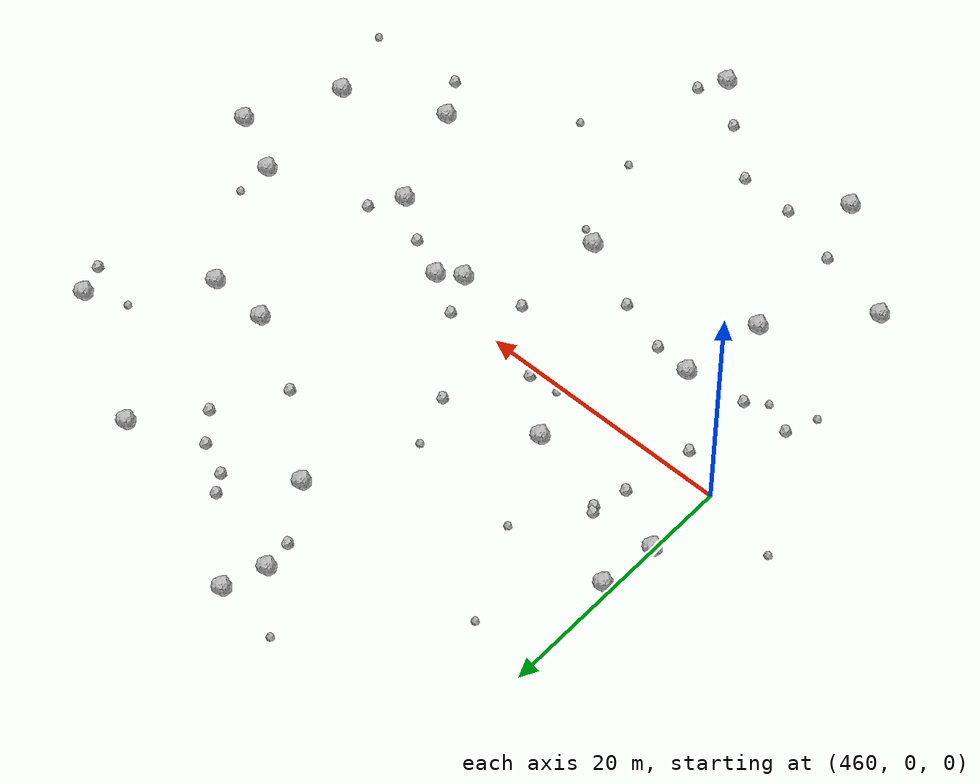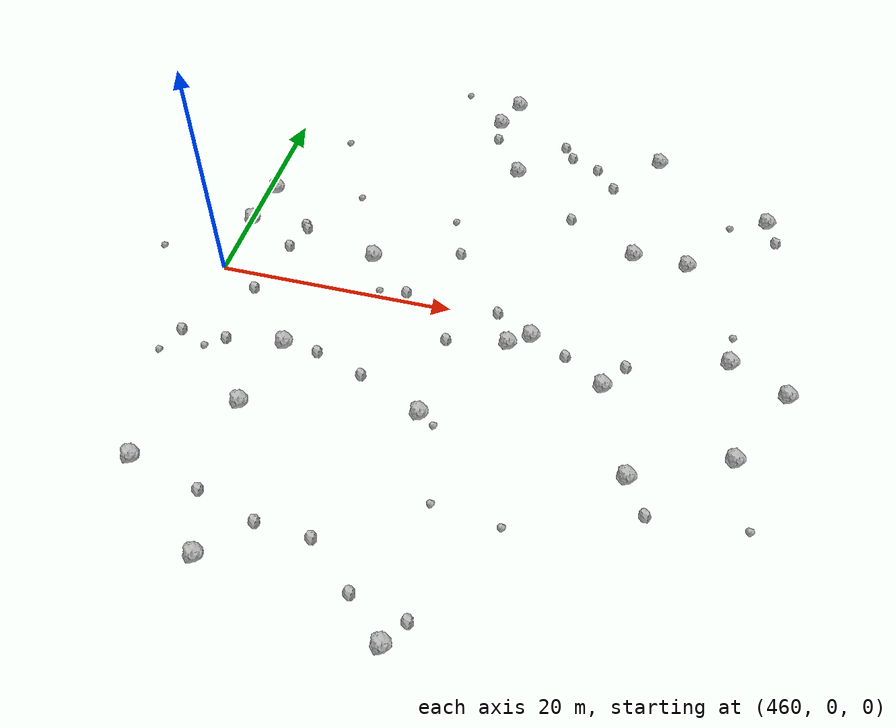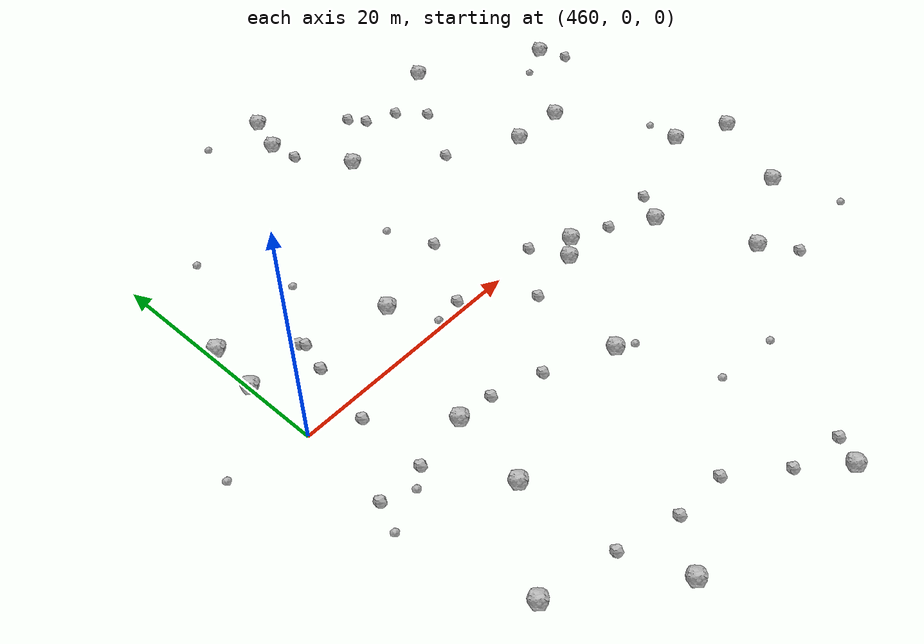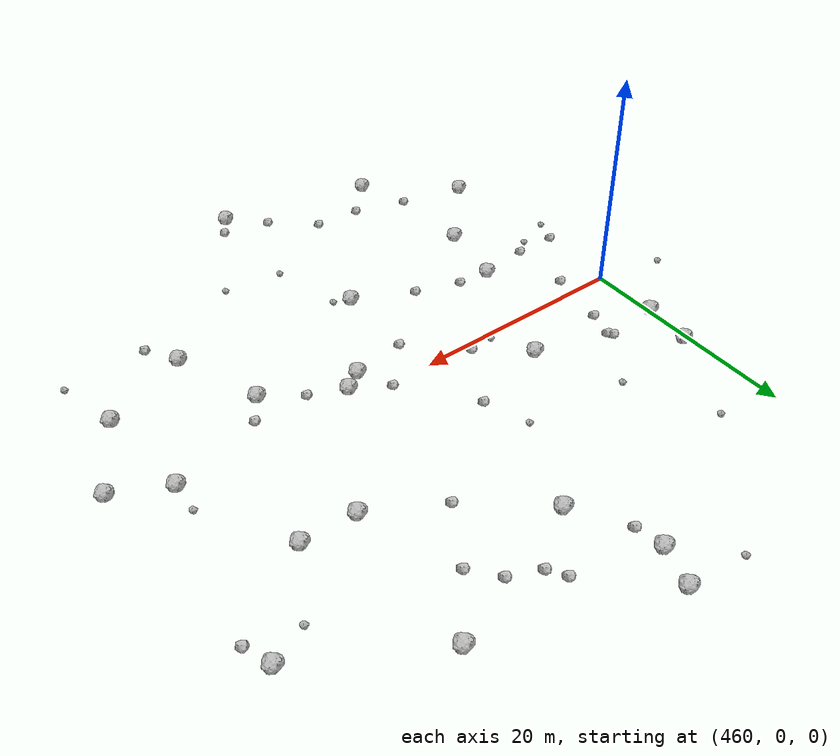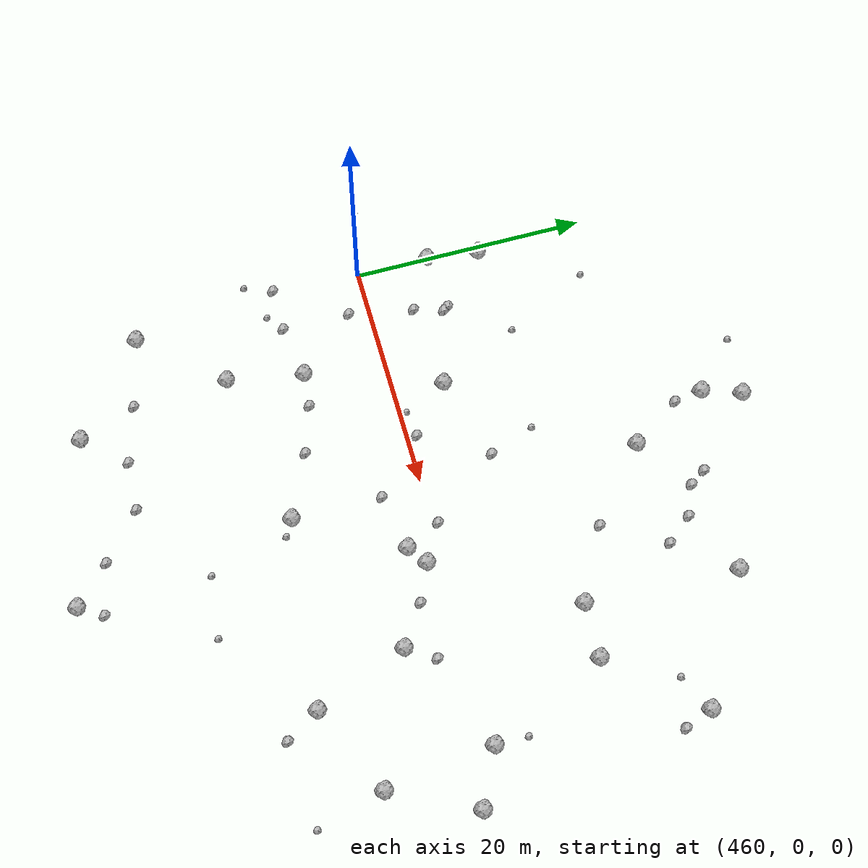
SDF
<sdf version="1.6">
 <world name="default">
  <include><uri>model://sun</uri></include>
  <model name="rock1_12_4">
   <include><uri>model://rock1</uri><pose>480.5109723797623 -11.057132524679524 0.5 0 0 0</pose></include>
  </model>
  <model name="rock1_12_5">
   <include><uri>model://rock1</uri><pose>485.47153551833435 -2.6096847310841724 0.5 0 0 0</pose></include>
  </model>
  <model name="rock1_12_6">
   <include><uri>model://rock1</uri><pose>483.2749069384954 -29.410217891956982 0.5 0 0 0</pose></include>
  </model>
  <model name="rock1_12_7">
   <include><uri>model://rock1</uri><pose>504.0268763621981 -9.59371418069044 0.5 0 0 0</pose></include>
  </model>
  <model name="rock1_12_8">
   <include><uri>model://rock1</uri><pose>460.11165817649675 6.171542375359479 0.5 0 0 0</pose></include>
  </model>
  <model name="rock1_12_9">
   <include><uri>model://rock1</uri><pose>468.0888851068425 -6.890571092241551 0.5 0 0 0</pose></include>
  </model>
  <model name="rock1_12_10">
   <include><uri>model://rock1</uri><pose>461.13827065953234 -19.9385279317422 0.5 0 0 0</pose></include>
  </model>
  <model name="rock1_12_11">
   <include><uri>model://rock1</uri><pose>502.89814856038583 -0.4120351850877775 0.5 0 0 0</pose></include>
  </model>
  <model name="rock1_12_12">
   <include><uri>model://rock1</uri><pose>481.74044561873535 18.2328542588656 0.5 0 0 0</pose></include>
  </model>
  <model name="rock1_12_13">
   <include><uri>model://rock1</uri><pose>466.9070525303651 -13.334815517239107 0.5 0 0 0</pose></include>
  </model>
  <model name="rock1_12_14">
   <include><uri>model://rock1</uri><pose>504.72800858565904 16.683617766107886 0.5 0 0 0</pose></include>
  </model>
  <model name="rock1_12_15">
   <include><uri>model://rock1</uri><pose>472.05255393525044 4.267952943816475 0.5 0 0 0</pose></include>
  </model>
  <model name="rock1_12_16">
   <include><uri>model://rock1</uri><pose>487.12541589136197 -1.4267981890440566 0.5 0 0 0</pose></include>
  </model>
  <model name="rock1_12_17">
   <include><uri>model://rock1</uri><pose>468.9809579729492 -26.31769781644667 0.5 0 0 0</pose></include>
  </model>
  <model name="rock1_12_18">
   <include><uri>model://rock1</uri><pose>479.7206435559295 28.24121333400651 0.5 0 0 0</pose></include>
  </model>
  <model name="rock1_12_19">
   <include><uri>model://rock1</uri><pose>478.6008825530702 24.99586749791787 0.5 0 0 0</pose></include>
  </model>
  <model name="rock1_12_20">
   <include><uri>model://rock1</uri><pose>496.5624606863967 -12.960650884342787 0.5 0 0 0</pose></include>
  </model>
  <model name="rock1_12_21">
   <include><uri>model://rock1</uri><pose>507.4560161053452 -2.698231141828739 0.5 0 0 0</pose></include>
  </model>
  <model name="rock1_12_22">
   <include><uri>model://rock1</uri><pose>493.79813978308727 9.793158797917627 0.5 0 0 0</pose></include>
  </model>
  <model name="rock1_12_23">
   <include><uri>model://rock1</uri><pose>460.686253196964 10.63052144512055 0.5 0 0 0</pose></include>
  </model>
  <model name="rock1_12_24">
   <include><uri>model://rock1</uri><pose>498.4443030432806 9.58918761544804 0.5 0 0 0</pose></include>
  </model>
  <model name="rock1_12_25">
   <include><uri>model://rock1</uri><pose>493.52272076300204 -5.099119917029725 0.5 0 0 0</pose></include>
  </model>
  <model name="rock1_12_26">
   <include><uri>model://rock1</uri><pose>494.42724195950814 22.710605386072217 0.5 0 0 0</pose></include>
  </model>
  <model name="rock2_12_0">
   <include><uri>model://rock2</uri><pose>478.8812739510159 22.59062743984296 0.3 0 0 0</pose></include>
  </model>
  <model name="rock2_12_1">
   <include><uri>model://rock2</uri><pose>486.3622856909203 21.472292081922383 0.3 0 0 0</pose></include>
  </model>
  <model name="rock2_12_2">
   <include><uri>model://rock2</uri><pose>467.1121062557915 -21.409659755428983 0.3 0 0 0</pose></include>
  </model>
  <model name="rock2_12_3">
   <include><uri>model://rock2</uri><pose>464.5688649430886 3.72852102093146 0.3 0 0 0</pose></include>
  </model>
  <model name="rock2_12_4">
   <include><uri>model://rock2</uri><pose>476.2659657438352 -23.128175209671063 0.3 0 0 0</pose></include>
  </model>
  <model name="rock2_12_5">
   <include><uri>model://rock2</uri><pose>465.05646347541096 6.642159562182151 0.3 0 0 0</pose></include>
  </model>
  <model name="rock2_12_6">
   <include><uri>model://rock2</uri><pose>463.4914339851036 -1.7604792732665793 0.3 0 0 0</pose></include>
  </model>
  <model name="rock2_12_7">
   <include><uri>model://rock2</uri><pose>494.99266453385036 -2.769350940998997 0.3 0 0 0</pose></include>
  </model>
  <model name="rock2_12_8">
   <include><uri>model://rock2</uri><pose>479.306460127206 6.370904290470406 0.3 0 0 0</pose></include>
  </model>
  <model name="rock2_12_9">
   <include><uri>model://rock2</uri><pose>465.3442520324946 6.217978529465938 0.3 0 0 0</pose></include>
  </model>
  <model name="rock2_12_10">
   <include><uri>model://rock2</uri><pose>471.9848751965817 -22.88224671304303 0.3 0 0 0</pose></include>
  </model>
  <model name="rock2_12_11">
   <include><uri>model://rock2</uri><pose>488.9239825938523 20.331226280180154 0.3 0 0 0</pose></include>
  </model>
  <model name="rock2_12_12">
   <include><uri>model://rock2</uri><pose>480.5841049985312 -3.431897728986417 0.3 0 0 0</pose></include>
  </model>
  <model name="rock2_12_13">
   <include><uri>model://rock2</uri><pose>505.5845622035653 14.349729852342477 0.3 0 0 0</pose></include>
  </model>
  <model name="rock2_12_14">
   <include><uri>model://rock2</uri><pose>463.389722896359 -7.544098353246834 0.3 0 0 0</pose></include>
  </model>
  <model name="rock2_12_15">
   <include><uri>model://rock2</uri><pose>484.43845065999096 -27.429340355774254 0.3 0 0 0</pose></include>
  </model>
  <model name="rock2_12_16">
   <include><uri>model://rock2</uri><pose>476.0375532697185 0.8075804785346179 0.3 0 0 0</pose></include>
  </model>
  <model name="rock2_12_17">
   <include><uri>model://rock2</uri><pose>480.12955224655633 -26.435775971570067 0.3 0 0 0</pose></include>
  </model>
  <model name="rock2_12_18">
   <include><uri>model://rock2</uri><pose>498.26346311255026 -15.791613656540216 0.3 0 0 0</pose></include>
  </model>
  <model name="rock2_12_19">
   <include><uri>model://rock2</uri><pose>490.75165034721886 18.095814589222726 0.3 0 0 0</pose></include>
  </model>
  <model name="rock2_12_20">
   <include><uri>model://rock2</uri><pose>490.18962680378877 -2.8322378767974286 0.3 0 0 0</pose></include>
  </model>
  <model name="rock2_12_21">
   <include><uri>model://rock2</uri><pose>459.5661612264644 -7.532103413565 0.3 0 0 0</pose></include>
  </model>
  <model name="rock2_12_22">
   <include><uri>model://rock2</uri><pose>483.96986121397345 0.4009074539884949 0.3 0 0 0</pose></include>
  </model>
  <model name="rock2_12_23">
   <include><uri>model://rock2</uri><pose>470.99335090189913 -7.166312494035903 0.3 0 0 0</pose></include>
  </model>
  <model name="rock2_12_24">
   <include><uri>model://rock2</uri><pose>475.08890679275066 -8.543673521713131 0.3 0 0 0</pose></include>
  </model>
  <model name="rock2_12_25">
   <include><uri>model://rock2</uri><pose>487.75986588729404 13.05042127635933 0.3 0 0 0</pose></include>
  </model>
  <model name="rock2_12_26">
   <include><uri>model://rock2</uri><pose>485.4504775754856 22.868285886427714 0.3 0 0 0</pose></include>
  </model>
  <model name="rock3_12_0">
   <include><uri>model://rock3</uri><pose>488.75046560723763 -19.148230572970885 0.2 0 0 0</pose></include>
  </model>
  <model name="rock3_12_1">
   <include><uri>model://rock3</uri><pose>465.11455363391127 18.623239520617176 0.2 0 0 0</pose></include>
  </model>
  <model name="rock3_12_2">
   <include><uri>model://rock3</uri><pose>483.45786321865506 -18.49020113204408 0.2 0 0 0</pose></include>
  </model>
  <model name="rock3_12_3">
   <include><uri>model://rock3</uri><pose>468.6674597403605 11.332126875464539 0.2 0 0 0</pose></include>
  </model>
  <model name="rock3_12_4">
   <include><uri>model://rock3</uri><pose>501.5733227268985 15.283196398317521 0.2 0 0 0</pose></include>
  </model>
  <model name="rock3_12_5">
   <include><uri>model://rock3</uri><pose>502.892835341534 2.333733787856744 0.2 0 0 0</pose></include>
  </model>
  <model name="rock3_12_6">
   <include><uri>model://rock3</uri><pose>477.854033533008 10.256477308991464 0.2 0 0 0</pose></include>
  </model>
  <model name="rock3_12_7">
   <include><uri>model://rock3</uri><pose>481.8173925047545 -11.859220078581593 0.2 0 0 0</pose></include>
  </model>
  <model name="rock3_12_8">
   <include><uri>model://rock3</uri><pose>505.4952765333386 -15.304980297749296 0.2 0 0 0</pose></include>
  </model>
  <model name="rock3_12_9">
   <include><uri>model://rock3</uri><pose>461.91568920660166 -8.64750081783357 0.2 0 0 0</pose></include>
  </model>
  <model name="rock3_12_10">
   <include><uri>model://rock3</uri><pose>453.8269357896545 1.2501030433203582 0.2 0 0 0</pose></include>
  </model>
  <model name="rock3_12_11">
   <include><uri>model://rock3</uri><pose>473.7239671232406 0.5294145169766047 0.2 0 0 0</pose></include>
  </model>
  <model name="rock3_12_12">
   <include><uri>model://rock3</uri><pose>474.505470121797 28.831700268113046 0.2 0 0 0</pose></include>
  </model>
  <model name="rock3_12_13">
   <include><uri>model://rock3</uri><pose>458.58942297385113 -9.912394028101861 0.2 0 0 0</pose></include>
  </model>
 </world>
</sdf>
